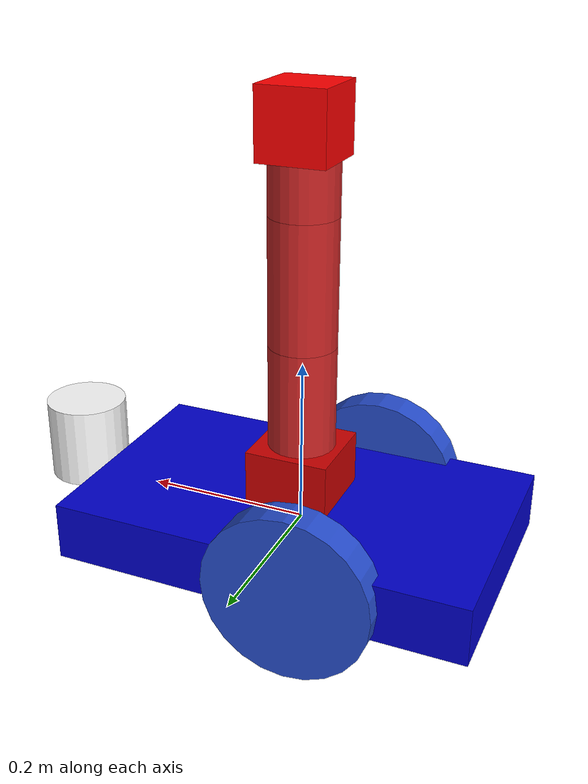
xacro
<?xml version="1.0" ?>
<robot name="robot_assignment" xmlns:xacro="https://www.ros.org/wiki/xacro">

  <xacro:include filename="$(find final_assignment)/urdf/materials.xacro" />
  <xacro:include filename="$(find final_assignment)/urdf/robot_assignment.gazebo" />

  <xacro:macro name="cylinder_inertia" params="mass r l">
    <inertia
      ixx="${mass*(3*r*r+l*l)/12}" ixy = "0" ixz = "0"
      iyy="${mass*(3*r*r+l*l)/12}" iyz = "0" izz="${mass*(r*r)/2}"
    />
  </xacro:macro>

  <xacro:macro name="link_wheel" params="name">
    <link name="${name}">
      <inertial>
        <mass value="0.2"/>
        <origin rpy="0 1.5707 1.5707" xyz="0 0 0"/>
      <inertia ixx="0.000526666666667" ixy="0" ixz="0" iyy="0.000526666666667" iyz="0" izz="0.001"/>
      </inertial>
      <collision name="link_right_wheel_collision">
        <origin rpy="0 1.5707 1.5707" xyz="0 0 0"/>
        <geometry>
          <cylinder length="0.04" radius="0.1"/>
        </geometry>
      </collision>
      <visual name="${name}_visual">
        <origin rpy="0 1.5707 1.5707" xyz="0 0 0"/>
        <geometry>
          <cylinder length="0.04" radius="0.1"/>
        </geometry>
      </visual>
    </link>
  </xacro:macro>

  <xacro:macro name="link_arm" params="name length xyz_origin">
		<link name="${name}">
			<inertial>
				<origin xyz="0 0 0" rpy="0 0 0"/>
				<mass value="0.025"/>
				<inertia ixx="0.000010279" ixy="0" ixz="0" iyy="0.000010279" iyz="0" izz="0.000007225"/>
			</inertial>
			<collision name="${name}_collision">
				<origin rpy="0 0 0" xyz="${xyz_origin}"/>
        <geometry>
          <cylinder length="${length}" radius="0.04"/>
        </geometry>
			</collision>
			<visual name="${name}_visual">
				<origin rpy="0 0 0" xyz="${xyz_origin}"/>
        <geometry>
          <cylinder length="${length}" radius="0.04"/>
        </geometry>
			</visual>
		</link>
	</xacro:macro>

  <xacro:macro name="joint_wheel" params="name child origin_xyz">
    <joint name="${name}" type="continuous">
      <origin rpy="0 0 0" xyz="${origin_xyz}"/>
      <child link="${child}"/>
      <parent link="base_link"/>
      <axis rpy="0 0 0" xyz="0 1 0"/>
      <limit effort="10000" velocity="1000"/>
      <joint_properties damping="1.0" friction="1.0"/>
    </joint>
  </xacro:macro>

  <xacro:macro name="joint_arm" params="name parent child origin_xyz axis_xyz">
    <joint name="${name}" type="revolute">
      <axis xyz="${axis_xyz}"/>
      <limit effort="1000.0" lower="-3.14" upper="3.14" velocity="0.02"/>
      <origin rpy="0 0 0" xyz="${origin_xyz}"/>
      <parent link="${parent}"/>
      <child link="${child}"/>
      <joint_properties damping="1.0" friction="1.0"/>
    </joint>
  </xacro:macro>

  <!-- MAIN BODY -->
  <link name="base_link">
    <pose>0 0 0.1 0 0 0</pose>
    <inertial>
      <mass value="5"/>
      <origin rpy="0 0 0" xyz="0 0 0.1"/>
      <inertia ixx="0.0395416666667" ixy="0" ixz="0" iyy="0.106208333333" iyz="0" izz="0.106208333333"/>
    </inertial>
    <!-- CHASSIS -->
    <collision name="collision_chassis">
      <geometry>
      <box size="0.5 0.3 0.07"/>
      </geometry>
    </collision>
    <visual>
      <origin rpy="0 0 0" xyz="0 0 0"/>
      <geometry>
        <box size="0.5 0.3 0.07"/>
      </geometry>
      <material name="blue"/>
    </visual>
    <!-- CASTER FRONT -->
    <collision name="caster_front_collision">
      <origin rpy=" 0 0 0" xyz="0.35 0 -0.05"/>
      <geometry>
        <sphere radius="0.05"/>
      </geometry>
      <surface>
        <friction>
          <ode>
            <mu>0</mu>
            <mu2>0</mu2>
            <slip1>1.0</slip1>
            <slip2>1.0</slip2>
          </ode>
        </friction>
      </surface>
    </collision>
    <visual name="caster_front_visual">
      <origin rpy=" 0 0 0" xyz="0.2 0 -0.05"/>
      <geometry>
        <sphere radius="0.05"/>
      </geometry>
    </visual>
  </link>

  <!-- WHEEL RIGHT -->
  <xacro:link_wheel name="link_right_wheel" />
  <xacro:joint_wheel name="joint_right_wheel"  child="link_right_wheel"  origin_xyz="-0.05 0.15 0"  />

  <!-- WHEEL LEFT -->
  <xacro:link_wheel name="link_left_wheel" />
  <xacro:joint_wheel name="joint_left_wheel"   child="link_left_wheel"   origin_xyz="-0.05 -0.15 0"  />

  <!-- LASER -->
  <link name="laser">
    <inertial>
      <origin xyz="0 0 0" rpy="0 0 0" />
      <mass value="1" />
      <xacro:cylinder_inertia mass="1" r="0.05" l="0.1" />
    </inertial>
    <visual>
      <origin xyz="0 0 0" rpy="0 0 0" />
      <geometry>
        <cylinder radius="0.05" length="0.1"/>
      </geometry>
      <material name="white" />
    </visual>
    <collision>
      <origin xyz="0 0 0" rpy="0 0 0"/>
      <geometry>
        <cylinder radius="0.05" length="0.1"/>
      </geometry>
    </collision>
  </link>

  <joint name="joint_laser" type="fixed">
    <origin xyz="0.30 0 0.05" rpy="0 0 0"/>
    <parent link="base_link"/>
    <child link="laser"/>
  </joint>

  <!-- ARM BASE LINK -->
  <link name="arm_base_link">
  	<inertial>
  		<mass value="0.1"/>
  		<origin xyz="0 0 0" rpy="0 0 0" />
  		<inertia ixx="0.0000416666667" ixy="0" ixz="0" iyy="0.0000416666667" iyz="0" izz="0.0000416666667"/>
  	</inertial>
  	<collision>
  	  <origin xyz="0 0 0" rpy="0 0 0"/>
      <geometry>
        <box size="0.1 0.1 0.1"/>
      </geometry>
  	</collision>
  	<visual>
  	  <origin xyz="0 0 0" rpy="0 0 0"/>
      <geometry>
        <box size="0.1 0.1 0.1"/>
      </geometry>
      <material name="red" />
  	</visual>
  </link>

  <joint name="arm_base_to_base" type="fixed">
  	<origin rpy="0 0 0" xyz="0 0 0.05"/>
  	<parent link="base_link"/>
  	<child link="arm_base_link"/>
  </joint>

  <!-- ARM 0 -->
  <xacro:link_arm name="arm_link_01" length="0.15" xyz_origin="0 0 0.075"/>
  <xacro:joint_arm name="arm_joint_01" child="arm_link_01" parent="arm_base_link" origin_xyz="0 0 0.025" axis_xyz="0 0 1"/>

  <!-- ARM 1 -->
  <xacro:link_arm name="arm_link_02" length="0.15" xyz_origin="0 0 0.075"/>
  <xacro:joint_arm name="arm_joint_02" child="arm_link_02" parent="arm_link_01" origin_xyz="0 0 0.15" axis_xyz="1 0 0"/>

  <!-- ARM 2 -->
  <xacro:link_arm name="arm_link_03" length="0.06" xyz_origin="0 0 0.03"/>
  <xacro:joint_arm name="arm_joint_03" child="arm_link_03" parent="arm_link_02" origin_xyz="0 0 0.15" axis_xyz="0 1 0"/>

  <!-- CAMERA -->
  <link name="camera_link">
  	<inertial>
  		<mass value="0.025"/>
  		<origin xyz="0 0 0" rpy="0 0 0" />
  		<inertia ixx="0.000010279" ixy="0" ixz="0" iyy="0.000010279" iyz="0" izz="0.000007225"/>
  	</inertial>
  	<collision>
  	  <origin xyz="0 0 0" rpy="0 0 0"/>
      <geometry>
        <box size="0.08 0.08 0.08"/>
      </geometry>
  	</collision>
  	<visual>
  	  <origin xyz="0 0 0" rpy="0 0 1.57"/>
      <geometry>
        <box size="0.08 0.08 0.08"/>
      </geometry>
      <material name="red" >
        <color rgba="1 0 0 1"/>
      </material>
  	</visual>
  </link>

  <joint name="camera_joint" type="fixed">
  	<origin rpy="0 0 0" xyz="0 0 0.1"/>
  	<parent link="arm_link_03"/>
  	<child link="camera_link"/>
  </joint>

  <!-- TRANSMISSION -->
  <transmission name="arm_joint_01_trans">
    <type>transmission_interface/SimpleTransmission</type>
    <joint name="arm_joint_01">
      <hardwareInterface>hardware_interface/EffortJointInterface</hardwareInterface>
    </joint>
    <actuator name="motor1">
      <hardwareInterface>hardware_interface/EffortJointInterface</hardwareInterface>
      <mechanicalInterface>1</mechanicalInterface>
    </actuator>
  </transmission>

  <transmission name="arm_joint_02_trans">
    <type>transmission_interface/SimpleTransmission</type>
    <joint name="arm_joint_02">
      <hardwareInterface>hardware_interface/EffortJointInterface</hardwareInterface>
    </joint>
    <actuator name="motor2">
      <hardwareInterface>hardware_interface/EffortJointInterface</hardwareInterface>
      <mechanicalInterface>1</mechanicalInterface>
    </actuator>
  </transmission>

  <transmission name="arm_joint_03_trans">
    <type>transmission_interface/SimpleTransmission</type>
    <joint name="arm_joint_03">
      <hardwareInterface>hardware_interface/EffortJointInterface</hardwareInterface>
    </joint>
    <actuator name="motor3">
      <hardwareInterface>hardware_interface/EffortJointInterface</hardwareInterface>
      <mechanicalInterface>1</mechanicalInterface>
    </actuator>
  </transmission>

</robot>

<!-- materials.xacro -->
<robot xmlns:xacro="https://www.ros.org/wiki/xacro" >
  <!-- A simple list of materials that we can import into the robot description -->
  <!-- file and use to color the visual elements. -->
  <material name="black">
    <color rgba="0.0 0.0 0.0 1.0"/>
  </material>
  <material name="blue">
    <color rgba="0.0 0.0 0.8 1.0"/>
  </material>
  <material name="green">
    <color rgba="0.0 0.8 0.0 1.0"/>
  </material>
  <material name="grey">
    <color rgba="0.2 0.2 0.2 1.0"/>
  </material>
  <material name="orange">
    <color rgba="1.0 0.423529411765 0.0392156862745 1.0"/>
  </material>
  <material name="brown">
    <color rgba="0.870588235294 0.811764705882 0.764705882353 1.0"/>
  </material>
  <material name="red">
    <color rgba="0.8 0.0 0.0 1.0"/>
  </material>
  <material name="white">
    <color rgba="1.0 1.0 1.0 1.0"/>
  </material>

</robot>
